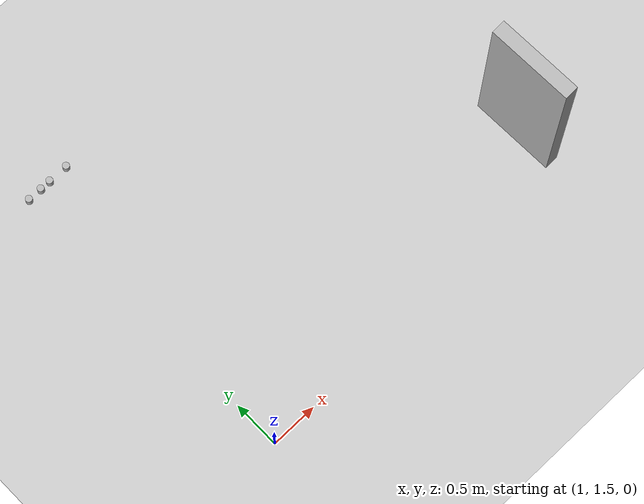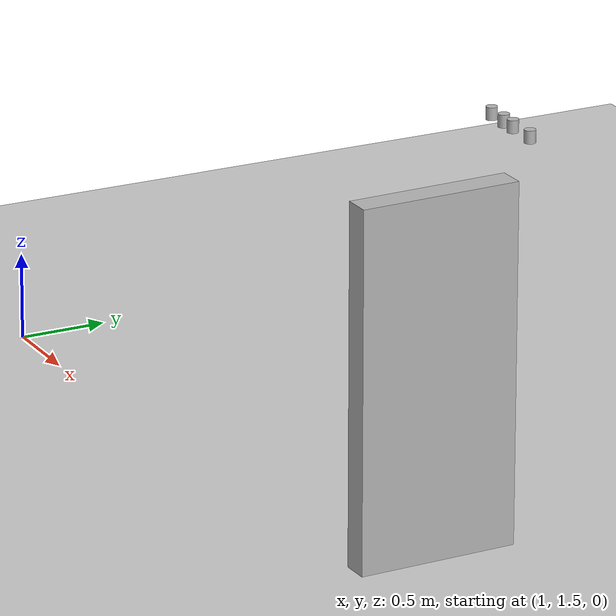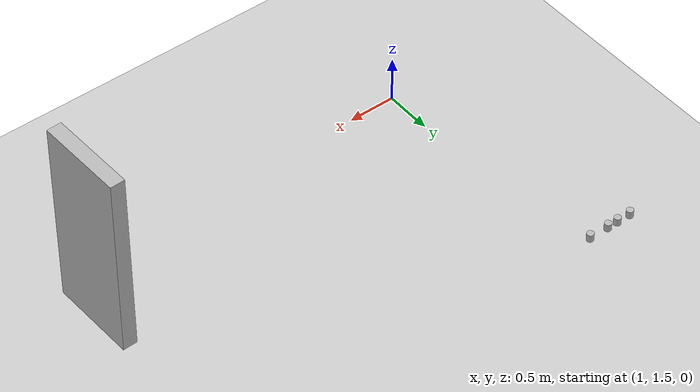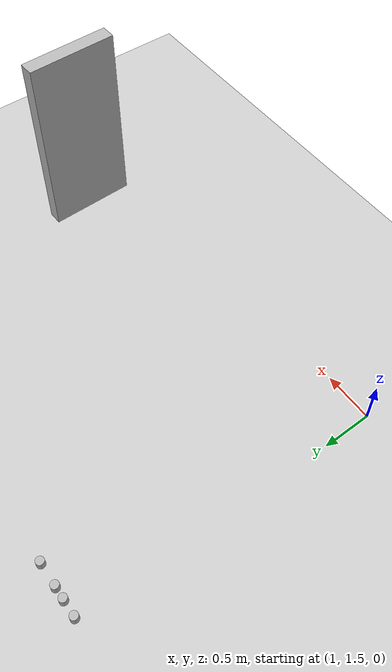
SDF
<sdf version="1.6">
 <world name="default">
  <model name="ground_plane">
   <static>1</static>
   <link name="link">
    <collision name="collision">
     <geometry><plane><normal>0 0 1</normal><size>100 100</size></plane></geometry>
     <surface><friction><ode><mu>100</mu><mu2>50</mu2></ode></friction></surface>
    </collision>
    <visual name="visual">
     <cast_shadows>0</cast_shadows>
     <geometry><plane><normal>0 0 1</normal><size>100 100</size></plane></geometry>
     <material>
      <script><uri>file://media/materials/scripts/gazebo.material</uri><name>Gazebo/Grey</name></script>
     </material>
    </visual>
   </link>
  </model>
  <model name="door">
   <link name="link_0">
    <visual name="visual">
     <pose>0 0 1 0 -0 0</pose>
     <geometry><box><size>0.9 0.15 2</size></box></geometry>
     <material>
      <script>
       <uri>model://door/materials/scripts</uri>
       <uri>model://door/materials/textures</uri>
       <name>door</name>
      </script>
     </material>
    </visual>
    <collision name="collision">
     <pose>0 0 1 0 -0 0</pose>
     <geometry><box><size>0.9 0.15 2</size></box></geometry>
    </collision>
   </link>
   <static>1</static>
   <pose>4.79764 2.09948 0 0 -0 1.6</pose>
  </model>
  <model name="cans_3">
   <link name="link">
    <inertial>
     <mass>0.362409</mass>
     <inertia>
      <ixx>0.00022647</ixx>
      <ixy>0</ixy>
      <ixz>0</ixz>
      <iyy>0.00022647</iyy>
      <iyz>0</iyz>
      <izz>0.0001015</izz>
     </inertia>
     <pose>0 0 0.2 0 -0 0</pose>
    </inertial>
    <self_collide>1</self_collide>
    <kinematic>1</kinematic>
    <visual name="ModelPreview_8::link::visual_1">
     <geometry><mesh><uri>model://cans/meshes/cylindermesh.dae</uri><scale>1 1 1</scale></mesh></geometry>
     <material>
      <script>
       <uri>model://cans/materials/scripts</uri>
       <uri>model://cans/materials/textures</uri>
       <name>cylinder</name>
      </script>
     </material>
    </visual>
    <visual name="visual">
     <geometry><mesh><uri>model://cans/meshes/cylindermesh.dae</uri><scale>1 1 1</scale></mesh></geometry>
     <material>
      <script>
       <uri>model://cans/materials/scripts</uri>
       <uri>model://cans/materials/textures</uri>
       <name>cylinder</name>
      </script>
     </material>
    </visual>
    <collision name="collision">
     <geometry><mesh><uri>model://cans/meshes/cylindermesh.dae</uri><scale>1 1 1</scale></mesh></geometry>
     <surface>
      <friction>
       <ode><mu>1</mu><mu2>1</mu2><fdir1>0 0 0</fdir1><slip1>0</slip1><slip2>0</slip2></ode>
       <torsional>
        <coefficient>1</coefficient>
        <patch_radius>0</patch_radius>
        <surface_radius>0</surface_radius>
        <use_patch_radius>1</use_patch_radius>
        <ode><slip>0</slip></ode>
       </torsional>
      </friction>
      <bounce><restitution_coefficient>0</restitution_coefficient><threshold>1e+06</threshold></bounce>
      <contact>
       <collide_without_contact>0</collide_without_contact>
       <collide_without_contact_bitmask>1</collide_without_contact_bitmask>
       <collide_bitmask>1</collide_bitmask>
       <ode>
        <soft_cfm>0</soft_cfm>
        <soft_erp>0.2</soft_erp>
        <kp>1e+13</kp>
        <kd>1</kd>
        <max_vel>0.01</max_vel>
        <min_depth>0</min_depth>
       </ode>
       <bullet>
        <split_impulse>1</split_impulse>
        <split_impulse_penetration_threshold>-0.01</split_impulse_penetration_threshold>
        <soft_cfm>0</soft_cfm>
        <soft_erp>0.2</soft_erp>
        <kp>1e+13</kp>
        <kd>1</kd>
       </bullet>
      </contact>
     </surface>
    </collision>
   </link>
   <static>0</static>
   <pose>0.834221 4.6 0.815 0 -0 0</pose>
  </model>
  <model name="cans_4">
   <link name="link">
    <inertial>
     <mass>0.362409</mass>
     <inertia>
      <ixx>0.00022647</ixx>
      <ixy>0</ixy>
      <ixz>0</ixz>
      <iyy>0.00022647</iyy>
      <iyz>0</iyz>
      <izz>0.0001015</izz>
     </inertia>
     <pose>0 0 0.2 0 -0 0</pose>
    </inertial>
    <self_collide>1</self_collide>
    <kinematic>1</kinematic>
    <visual name="ModelPreview_8::link::visual_1">
     <geometry><mesh><uri>model://cans/meshes/cylindermesh.dae</uri><scale>1 1 1</scale></mesh></geometry>
     <material>
      <script>
       <uri>model://cans/materials/scripts</uri>
       <uri>model://cans/materials/textures</uri>
       <name>cylinder</name>
      </script>
     </material>
    </visual>
    <visual name="visual">
     <geometry><mesh><uri>model://cans/meshes/cylindermesh.dae</uri><scale>1 1 1</scale></mesh></geometry>
     <material>
      <script>
       <uri>model://cans/materials/scripts</uri>
       <uri>model://cans/materials/textures</uri>
       <name>cylinder</name>
      </script>
     </material>
    </visual>
    <collision name="collision">
     <geometry><mesh><uri>model://cans/meshes/cylindermesh.dae</uri><scale>1 1 1</scale></mesh></geometry>
     <surface>
      <friction>
       <ode><mu>1</mu><mu2>1</mu2><fdir1>0 0 0</fdir1><slip1>0</slip1><slip2>0</slip2></ode>
       <torsional>
        <coefficient>1</coefficient>
        <patch_radius>0</patch_radius>
        <surface_radius>0</surface_radius>
        <use_patch_radius>1</use_patch_radius>
        <ode><slip>0</slip></ode>
       </torsional>
      </friction>
      <bounce><restitution_coefficient>0</restitution_coefficient><threshold>1e+06</threshold></bounce>
      <contact>
       <collide_without_contact>0</collide_without_contact>
       <collide_without_contact_bitmask>1</collide_without_contact_bitmask>
       <collide_bitmask>1</collide_bitmask>
       <ode>
        <soft_cfm>0</soft_cfm>
        <soft_erp>0.2</soft_erp>
        <kp>1e+13</kp>
        <kd>1</kd>
        <max_vel>0.01</max_vel>
        <min_depth>0</min_depth>
       </ode>
       <bullet>
        <split_impulse>1</split_impulse>
        <split_impulse_penetration_threshold>-0.01</split_impulse_penetration_threshold>
        <soft_cfm>0</soft_cfm>
        <soft_erp>0.2</soft_erp>
        <kp>1e+13</kp>
        <kd>1</kd>
       </bullet>
      </contact>
     </surface>
    </collision>
   </link>
   <static>0</static>
   <pose>0.981183 4.6 0.815 0 -0 0</pose>
  </model>
  <model name="cans_5">
   <link name="link">
    <inertial>
     <mass>0.362409</mass>
     <inertia>
      <ixx>0.00022647</ixx>
      <ixy>0</ixy>
      <ixz>0</ixz>
      <iyy>0.00022647</iyy>
      <iyz>0</iyz>
      <izz>0.0001015</izz>
     </inertia>
     <pose>0 0 0.2 0 -0 0</pose>
    </inertial>
    <self_collide>1</self_collide>
    <kinematic>1</kinematic>
    <visual name="ModelPreview_8::link::visual_1">
     <geometry><mesh><uri>model://cans/meshes/cylindermesh.dae</uri><scale>1 1 1</scale></mesh></geometry>
     <material>
      <script>
       <uri>model://cans/materials/scripts</uri>
       <uri>model://cans/materials/textures</uri>
       <name>cylinder</name>
      </script>
     </material>
    </visual>
    <visual name="visual">
     <geometry><mesh><uri>model://cans/meshes/cylindermesh.dae</uri><scale>1 1 1</scale></mesh></geometry>
     <material>
      <script>
       <uri>model://cans/materials/scripts</uri>
       <uri>model://cans/materials/textures</uri>
       <name>cylinder</name>
      </script>
     </material>
    </visual>
    <collision name="collision">
     <geometry><mesh><uri>model://cans/meshes/cylindermesh.dae</uri><scale>1 1 1</scale></mesh></geometry>
     <surface>
      <friction>
       <ode><mu>1</mu><mu2>1</mu2><fdir1>0 0 0</fdir1><slip1>0</slip1><slip2>0</slip2></ode>
       <torsional>
        <coefficient>1</coefficient>
        <patch_radius>0</patch_radius>
        <surface_radius>0</surface_radius>
        <use_patch_radius>1</use_patch_radius>
        <ode><slip>0</slip></ode>
       </torsional>
      </friction>
      <bounce><restitution_coefficient>0</restitution_coefficient><threshold>1e+06</threshold></bounce>
      <contact>
       <collide_without_contact>0</collide_without_contact>
       <collide_without_contact_bitmask>1</collide_without_contact_bitmask>
       <collide_bitmask>1</collide_bitmask>
       <ode>
        <soft_cfm>0</soft_cfm>
        <soft_erp>0.2</soft_erp>
        <kp>1e+13</kp>
        <kd>1</kd>
        <max_vel>0.01</max_vel>
        <min_depth>0</min_depth>
       </ode>
       <bullet>
        <split_impulse>1</split_impulse>
        <split_impulse_penetration_threshold>-0.01</split_impulse_penetration_threshold>
        <soft_cfm>0</soft_cfm>
        <soft_erp>0.2</soft_erp>
        <kp>1e+13</kp>
        <kd>1</kd>
       </bullet>
      </contact>
     </surface>
    </collision>
   </link>
   <static>0</static>
   <pose>1.09177 4.6 0.815 0 -0 0</pose>
  </model>
  <model name="cans_6">
   <link name="link">
    <inertial>
     <mass>0.362409</mass>
     <inertia>
      <ixx>0.00022647</ixx>
      <ixy>0</ixy>
      <ixz>0</ixz>
      <iyy>0.00022647</iyy>
      <iyz>0</iyz>
      <izz>0.0001015</izz>
     </inertia>
     <pose>0 0 0.2 0 -0 0</pose>
    </inertial>
    <self_collide>1</self_collide>
    <kinematic>1</kinematic>
    <visual name="ModelPreview_8::link::visual_1">
     <geometry><mesh><uri>model://cans/meshes/cylindermesh.dae</uri><scale>1 1 1</scale></mesh></geometry>
     <material>
      <script>
       <uri>model://cans/materials/scripts</uri>
       <uri>model://cans/materials/textures</uri>
       <name>cylinder</name>
      </script>
     </material>
    </visual>
    <visual name="visual">
     <geometry><mesh><uri>model://cans/meshes/cylindermesh.dae</uri><scale>1 1 1</scale></mesh></geometry>
     <material>
      <script>
       <uri>model://cans/materials/scripts</uri>
       <uri>model://cans/materials/textures</uri>
       <name>cylinder</name>
      </script>
     </material>
    </visual>
    <collision name="collision">
     <geometry><mesh><uri>model://cans/meshes/cylindermesh.dae</uri><scale>1 1 1</scale></mesh></geometry>
     <surface>
      <friction>
       <ode><mu>1</mu><mu2>1</mu2><fdir1>0 0 0</fdir1><slip1>0</slip1><slip2>0</slip2></ode>
       <torsional>
        <coefficient>1</coefficient>
        <patch_radius>0</patch_radius>
        <surface_radius>0</surface_radius>
        <use_patch_radius>1</use_patch_radius>
        <ode><slip>0</slip></ode>
       </torsional>
      </friction>
      <bounce><restitution_coefficient>0</restitution_coefficient><threshold>1e+06</threshold></bounce>
      <contact>
       <collide_without_contact>0</collide_without_contact>
       <collide_without_contact_bitmask>1</collide_without_contact_bitmask>
       <collide_bitmask>1</collide_bitmask>
       <ode>
        <soft_cfm>0</soft_cfm>
        <soft_erp>0.2</soft_erp>
        <kp>1e+13</kp>
        <kd>1</kd>
        <max_vel>0.01</max_vel>
        <min_depth>0</min_depth>
       </ode>
       <bullet>
        <split_impulse>1</split_impulse>
        <split_impulse_penetration_threshold>-0.01</split_impulse_penetration_threshold>
        <soft_cfm>0</soft_cfm>
        <soft_erp>0.2</soft_erp>
        <kp>1e+13</kp>
        <kd>1</kd>
       </bullet>
      </contact>
     </surface>
    </collision>
   </link>
   <static>0</static>
   <pose>1.2973 4.6 0.815 0 -0 0</pose>
  </model>
 </world>
</sdf>
